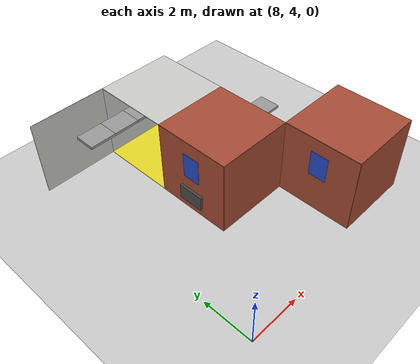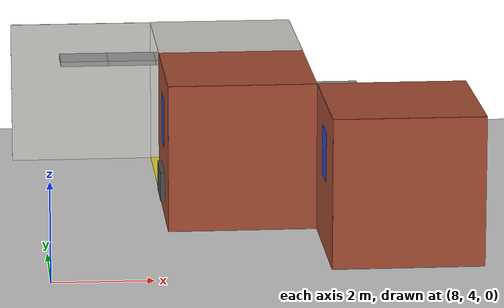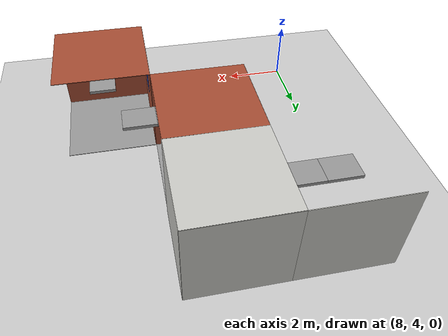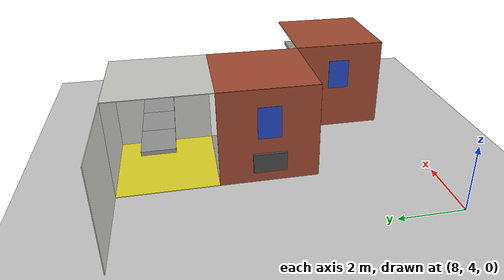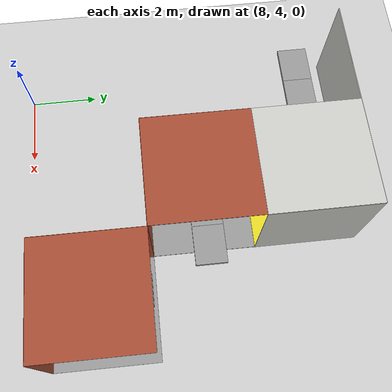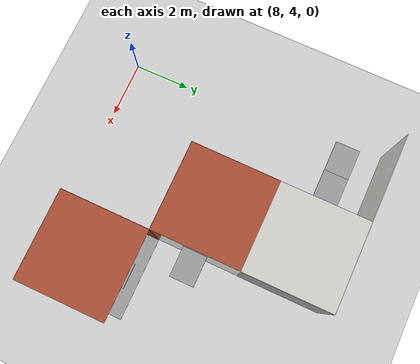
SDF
<sdf version="1.6">
 <world name="default">
  <model name="ground_plane">
   <static>1</static>
   <link name="link">
    <collision name="collision">
     <geometry><plane><normal>0 0 1</normal><size>200 200</size></plane></geometry>
     <surface><friction><ode><mu>100</mu><mu2>50</mu2></ode></friction></surface>
    </collision>
    <visual name="visual">
     <cast_shadows>0</cast_shadows>
     <geometry><plane><normal>0 0 1</normal><size>200 200</size></plane></geometry>
     <material>
      <script><uri>file://media/materials/scripts/gazebo.material</uri><name>Gazebo/Grey</name></script>
     </material>
    </visual>
   </link>
  </model>
  <model name="wall_left_3_4_0_1">
   <static>1</static>
   <pose>9.0 13.5 1.5 0.0 0.0 0.0</pose>
   <link name="link">
    <collision name="collision"><geometry><box><size>3 0.02 3</size></box></geometry></collision>
    <visual name="visual">
     <material>
      <script><name>Gazebo/CeilingTiled</name><uri>file://media/materials/scripts/gazebo.material</uri></script>
      <ambient>1 1 1 1</ambient>
     </material>
     <geometry><box><size>3 0.02 3</size></box></geometry>
    </visual>
   </link>
  </model>
  <model name="wall_front_4_4_0_2">
   <static>1</static>
   <pose>13.5 12.0 1.5 0.0 0.0 -1.57</pose>
   <link name="link">
    <collision name="collision"><geometry><box><size>3 0.02 3</size></box></geometry></collision>
    <visual name="visual">
     <material>
      <script><name>Gazebo/CeilingTiled</name><uri>file://media/materials/scripts/gazebo.material</uri></script>
      <ambient>1 1 1 1</ambient>
     </material>
     <geometry><box><size>3 0.02 3</size></box></geometry>
    </visual>
   </link>
  </model>
  <model name="wall_left_4_4_0_2">
   <static>1</static>
   <pose>12.0 13.5 1.5 0.0 0.0 0.0</pose>
   <link name="link">
    <collision name="collision"><geometry><box><size>3 0.02 3</size></box></geometry></collision>
    <visual name="visual">
     <material>
      <script><name>Gazebo/CeilingTiled</name><uri>file://media/materials/scripts/gazebo.material</uri></script>
      <ambient>1 1 1 1</ambient>
     </material>
     <geometry><box><size>3 0.02 3</size></box></geometry>
    </visual>
   </link>
  </model>
  <model name="wall_top_4_4_0_2">
   <static>1</static>
   <pose>12.0 12.0 3.0 1.57 0.0 -1.57</pose>
   <link name="link">
    <collision name="collision"><geometry><box><size>3 0.02 3</size></box></geometry></collision>
    <visual name="visual">
     <material>
      <script><name>Gazebo/CeilingTiled</name><uri>file://media/materials/scripts/gazebo.material</uri></script>
      <ambient>1 1 1 1</ambient>
     </material>
     <geometry><box><size>3 0.02 3</size></box></geometry>
    </visual>
   </link>
  </model>
  <model name="wall_bottom_4_4_0_2">
   <static>1</static>
   <pose>12.0 12.0 0.0 0.0 0.0 -1.57</pose>
   <link name="link">
    <collision name="collision"><geometry><box><size>3 3 0.02</size></box></geometry></collision>
    <visual name="visual">
     <material>
      <script><name>Gazebo/Yellow</name><uri>file://media/materials/scripts/gazebo.material</uri></script>
     </material>
     <geometry><box><size>3 3 0.02</size></box></geometry>
    </visual>
   </link>
  </model>
  <model name="ceiling_1_3_4_0_1">
   <pose>9.0 12.0 2.55 0.0 0.0 -1.57</pose>
   <link name="link_1">
    <visual name="visual">
     <geometry><box><size>0.8 1 0.1</size></box></geometry>
     <material>
      <script><uri>file://media/materials/scripts/gazebo.material</uri><name>Gazebo/Grey</name></script>
     </material>
    </visual>
    <collision name="collision"><geometry><box><size>0.8 1 0.1</size></box></geometry></collision>
   </link>
   <static>1</static>
  </model>
  <model name="ceiling_1_3_4_2_1">
   <pose>10.0 12.0 2.55 0.0 0.0 -1.57</pose>
   <link name="link_1">
    <visual name="visual">
     <geometry><box><size>0.8 1 0.1</size></box></geometry>
     <material>
      <script><uri>file://media/materials/scripts/gazebo.material</uri><name>Gazebo/Grey</name></script>
     </material>
    </visual>
    <collision name="collision"><geometry><box><size>0.8 1 0.1</size></box></geometry></collision>
   </link>
   <static>1</static>
  </model>
  <model name="ceiling_1_4_4_0_2">
   <pose>11.0 12.0 2.55 0.0 0.0 -1.57</pose>
   <link name="link_1">
    <visual name="visual">
     <geometry><box><size>0.8 1 0.1</size></box></geometry>
     <material>
      <script><uri>file://media/materials/scripts/gazebo.material</uri><name>Gazebo/Grey</name></script>
     </material>
    </visual>
    <collision name="collision"><geometry><box><size>0.8 1 0.1</size></box></geometry></collision>
   </link>
   <static>1</static>
  </model>
  <model name="ceiling_1_4_4_1_2">
   <pose>12.0 11.0 2.55 0.0 0.0 0.0</pose>
   <link name="link_1">
    <visual name="visual">
     <geometry><box><size>0.8 1 0.1</size></box></geometry>
     <material>
      <script><uri>file://media/materials/scripts/gazebo.material</uri><name>Gazebo/Grey</name></script>
     </material>
    </visual>
    <collision name="collision"><geometry><box><size>0.8 1 0.1</size></box></geometry></collision>
   </link>
   <static>1</static>
  </model>
  <model name="panel_4_3_0_3">
   <static>1</static>
   <pose>10.5 9.0 0.66 0.0 0.0 3.14</pose>
   <link name="link">
    <collision name="collision"><geometry><box><size>0.2 1 0.6</size></box></geometry></collision>
    <visual name="visual">
     <material>
      <script><name>Gazebo/DarkGrey</name><uri>file://media/materials/scripts/gazebo.material</uri></script>
     </material>
     <geometry><box><size>0.2 1 0.6</size></box></geometry>
    </visual>
   </link>
  </model>
  <model name="wall_front_4_3_0_3">
   <static>1</static>
   <pose>12.0 7.5 1.5 0.0 0.0 3.14</pose>
   <link name="link">
    <collision name="collision"><geometry><box><size>3 0.02 3</size></box></geometry></collision>
    <visual name="visual">
     <material>
      <script><name>Gazebo/Bricks</name><uri>file://media/materials/scripts/gazebo.material</uri></script>
     </material>
     <geometry><box><size>3 0.02 3</size></box></geometry>
    </visual>
   </link>
  </model>
  <model name="wall_right_4_3_0_3">
   <static>1</static>
   <pose>10.5 9.0 1.5 0.0 0.0 4.71</pose>
   <link name="link">
    <collision name="collision"><geometry><box><size>3 0.02 3</size></box></geometry></collision>
    <visual name="visual">
     <material>
      <script><name>Gazebo/Bricks</name><uri>file://media/materials/scripts/gazebo.material</uri></script>
     </material>
     <geometry><box><size>3 0.02 3</size></box></geometry>
    </visual>
   </link>
  </model>
  <model name="wall_top_4_3_0_3">
   <static>1</static>
   <pose>12.0 9.0 3.0 1.57 0.0 3.14</pose>
   <link name="link">
    <collision name="collision"><geometry><box><size>3 0.02 3</size></box></geometry></collision>
    <visual name="visual">
     <material>
      <script><name>Gazebo/Bricks</name><uri>file://media/materials/scripts/gazebo.material</uri></script>
     </material>
     <geometry><box><size>3 0.02 3</size></box></geometry>
    </visual>
   </link>
  </model>
  <model name="ceiling_1_4_3_0_3">
   <pose>12.0 10.0 2.55 0.0 0.0 3.14</pose>
   <link name="link_1">
    <visual name="visual">
     <geometry><box><size>0.8 1 0.1</size></box></geometry>
     <material>
      <script><uri>file://media/materials/scripts/gazebo.material</uri><name>Gazebo/Grey</name></script>
     </material>
    </visual>
    <collision name="collision"><geometry><box><size>0.8 1 0.1</size></box></geometry></collision>
   </link>
   <static>1</static>
  </model>
  <model name="ceiling_1_4_3_1_3">
   <pose>13.0 9.0 2.55 0.0 0.0 4.71</pose>
   <link name="link_1">
    <visual name="visual">
     <geometry><box><size>0.8 1 0.1</size></box></geometry>
     <material>
      <script><uri>file://media/materials/scripts/gazebo.material</uri><name>Gazebo/Grey</name></script>
     </material>
    </visual>
    <collision name="collision"><geometry><box><size>0.8 1 0.1</size></box></geometry></collision>
   </link>
   <static>1</static>
  </model>
  <model name="wall_bottom_4_3_0_3">
   <static>1</static>
   <pose>12.0 9.0 0.0 0.0 0.0 3.14</pose>
   <link name="link">
    <collision name="collision"><geometry><box><size>3 3 0.02</size></box></geometry></collision>
    <visual name="visual">
     <material>
      <script><name>Gazebo/Grey</name><uri>file://media/materials/scripts/gazebo.material</uri></script>
     </material>
     <geometry><box><size>3 3 0.02</size></box></geometry>
    </visual>
   </link>
  </model>
  <model name="panel_4_3_0_3">
   <static>1</static>
   <pose>10.5 9.0 1.95 0.0 0.0 3.14</pose>
   <link name="link">
    <collision name="collision"><geometry><box><size>0.04 0.7 1</size></box></geometry></collision>
    <visual name="visual">
     <material>
      <script><name>Gazebo/Blue</name><uri>file://media/materials/scripts/gazebo.material</uri></script>
     </material>
     <geometry><box><size>0.04 0.7 1</size></box></geometry>
    </visual>
   </link>
  </model>
  <model name="ceiling_1_5_3_0_2">
   <pose>14.0 9.0 2.55 0.0 0.0 -1.57</pose>
   <link name="link_1">
    <visual name="visual">
     <geometry><box><size>0.8 1 0.1</size></box></geometry>
     <material>
      <script><uri>file://media/materials/scripts/gazebo.material</uri><name>Gazebo/Grey</name></script>
     </material>
    </visual>
    <collision name="collision"><geometry><box><size>0.8 1 0.1</size></box></geometry></collision>
   </link>
   <static>1</static>
  </model>
  <model name="wall_front_5_2_0_3">
   <static>1</static>
   <pose>15.0 4.5 1.5 0.0 0.0 3.14</pose>
   <link name="link">
    <collision name="collision"><geometry><box><size>3 0.02 3</size></box></geometry></collision>
    <visual name="visual">
     <material>
      <script><name>Gazebo/Bricks</name><uri>file://media/materials/scripts/gazebo.material</uri></script>
     </material>
     <geometry><box><size>3 0.02 3</size></box></geometry>
    </visual>
   </link>
  </model>
  <model name="wall_right_5_2_0_3">
   <static>1</static>
   <pose>13.5 6.0 1.5 0.0 0.0 4.71</pose>
   <link name="link">
    <collision name="collision"><geometry><box><size>3 0.02 3</size></box></geometry></collision>
    <visual name="visual">
     <material>
      <script><name>Gazebo/Bricks</name><uri>file://media/materials/scripts/gazebo.material</uri></script>
     </material>
     <geometry><box><size>3 0.02 3</size></box></geometry>
    </visual>
   </link>
  </model>
  <model name="wall_top_5_2_0_3">
   <static>1</static>
   <pose>15.0 6.0 3.0 1.57 0.0 3.14</pose>
   <link name="link">
    <collision name="collision"><geometry><box><size>3 0.02 3</size></box></geometry></collision>
    <visual name="visual">
     <material>
      <script><name>Gazebo/Bricks</name><uri>file://media/materials/scripts/gazebo.material</uri></script>
     </material>
     <geometry><box><size>3 0.02 3</size></box></geometry>
    </visual>
   </link>
  </model>
  <model name="ceiling_1_5_2_0_3">
   <pose>15.0 7.0 2.55 0.0 0.0 3.14</pose>
   <link name="link_1">
    <visual name="visual">
     <geometry><box><size>0.8 1 0.1</size></box></geometry>
     <material>
      <script><uri>file://media/materials/scripts/gazebo.material</uri><name>Gazebo/Grey</name></script>
     </material>
    </visual>
    <collision name="collision"><geometry><box><size>0.8 1 0.1</size></box></geometry></collision>
   </link>
   <static>1</static>
  </model>
  <model name="wall_bottom_5_2_0_3">
   <static>1</static>
   <pose>15.0 6.0 0.0 0.0 0.0 3.14</pose>
   <link name="link">
    <collision name="collision"><geometry><box><size>3 3 0.02</size></box></geometry></collision>
    <visual name="visual">
     <material>
      <script><name>Gazebo/Grey</name><uri>file://media/materials/scripts/gazebo.material</uri></script>
     </material>
     <geometry><box><size>3 3 0.02</size></box></geometry>
    </visual>
   </link>
  </model>
  <model name="panel_5_2_0_3">
   <static>1</static>
   <pose>13.5 6.0 1.95 0.0 0.0 3.14</pose>
   <link name="link">
    <collision name="collision"><geometry><box><size>0.04 0.7 1</size></box></geometry></collision>
    <visual name="visual">
     <material>
      <script><name>Gazebo/Blue</name><uri>file://media/materials/scripts/gazebo.material</uri></script>
     </material>
     <geometry><box><size>0.04 0.7 1</size></box></geometry>
    </visual>
   </link>
  </model>
 </world>
</sdf>
